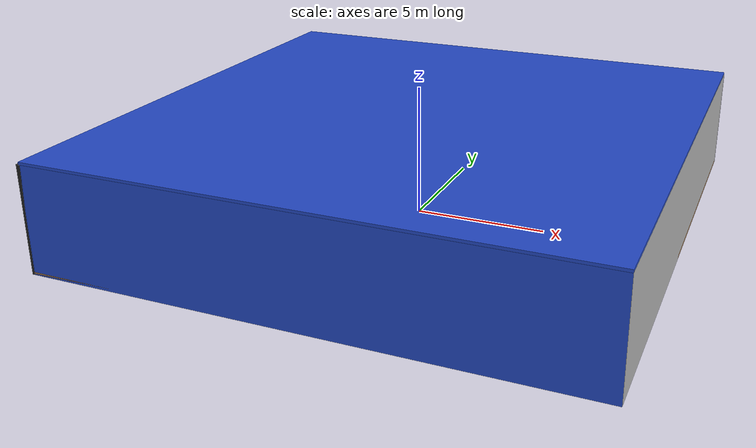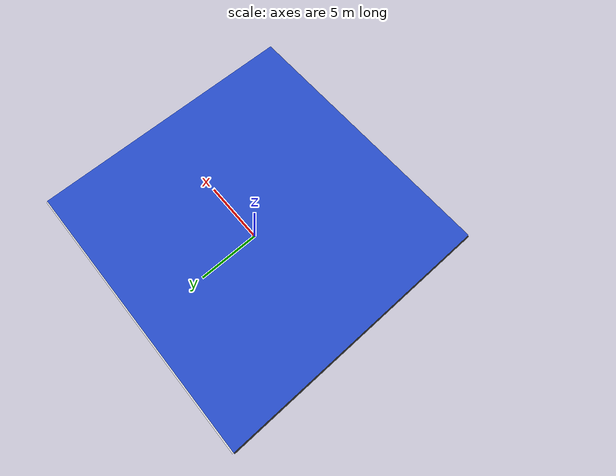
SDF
<sdf version="1.4">
 <world name="default">
  <physics type="ode">
   <max_step_size>0.001</max_step_size>
   <real_time_factor>1</real_time_factor>
   <real_time_update_rate>1000</real_time_update_rate>
   <gravity>0 0 -9.8</gravity>
  </physics>
  <scene><ambient>0.4 0.4 0.4 1</ambient><background>0.7 0.7 0.7 1</background><shadows>1</shadows></scene>
  <model name="Surrounding">
   <static>1</static>
   <link name="Ceiling">
    <collision name="Ceiling_Collision"><geometry><box><size>20 20 0.1</size></box></geometry></collision>
    <visual name="Ceiling_Visual">
     <geometry><box><size>20 20 0.1</size></box></geometry>
     <material>
      <script><uri>file://media/materials/scripts/gazebo.material</uri><name>Gazebo/BlueLaser</name></script>
     </material>
    </visual>
    <pose>0 0 4.05 0 0 0</pose>
   </link>
   <link name="Wall_South">
    <collision name="Wall_South_Collision">
     <geometry><box><size>20 0 4</size></box></geometry>
     <pose>0 0 2 0 -0 0</pose>
    </collision>
    <visual name="Wall_South_Visual">
     <pose>0 0 2 0 -0 0</pose>
     <geometry><box><size>20 0 4</size></box></geometry>
     <material>
      <script><uri>file://media/materials/scripts/gazebo.material</uri><name>Gazebo/BlueLaser</name></script>
     </material>
    </visual>
    <velocity_decay><linear>0</linear><angular>0</angular></velocity_decay>
    <pose>0 -10 0 0 -0 0</pose>
   </link>
   <link name="Wall_East">
    <collision name="Wall_21_Collision">
     <geometry><box><size>20 0 4</size></box></geometry>
     <pose>0 0 2 0 -0 0</pose>
    </collision>
    <visual name="Wall_21_Visual">
     <pose>0 0 2 0 -0 0</pose>
     <geometry><box><size>20 0 4</size></box></geometry>
     <material>
      <script><uri>file://media/materials/scripts/gazebo.material</uri><name>Gazebo/PioneerBody</name></script>
     </material>
    </visual>
    <velocity_decay><linear>0</linear><angular>0</angular></velocity_decay>
    <pose>10 0 0 0 -0 1.5708</pose>
   </link>
   <link name="Wall_North">
    <collision name="Wall_22_Collision">
     <geometry><box><size>20 0.2 4</size></box></geometry>
     <pose>0 0 2 0 -0 0</pose>
    </collision>
    <visual name="Wall_22_Visual">
     <pose>0 0 2 0 -0 0</pose>
     <geometry><box><size>20 0.2 4</size></box></geometry>
     <material>
      <script><uri>file://media/materials/scripts/gazebo.material</uri><name>Gazebo/White</name></script>
     </material>
    </visual>
    <velocity_decay><linear>0</linear><angular>0</angular></velocity_decay>
    <pose>0 10 0 0 -0 0</pose>
   </link>
   <link name="Wall_West">
    <collision name="Wall_23_Collision">
     <geometry><box><size>20 0.2 4</size></box></geometry>
     <pose>0 0 2 0 -0 0</pose>
    </collision>
    <visual name="Wall_23_Visual">
     <pose>0 0 2 0 -0 0</pose>
     <geometry><box><size>20 0.2 4</size></box></geometry>
     <material>
      <script><uri>file://media/materials/scripts/gazebo.material</uri><name>Gazebo/Black</name></script>
     </material>
    </visual>
    <velocity_decay><linear>0</linear><angular>0</angular></velocity_decay>
    <pose>-10 0 0 0 0 -1.5708</pose>
   </link>
   <link name="Ground_link">
    <collision name="collision">
     <pose>0 0 .05 0 -0 0</pose>
     <geometry><box><size>20 20 0.1</size></box></geometry>
    </collision>
    <visual name="visual">
     <pose>0 0 .05 0 -0 0</pose>
     <geometry><box><size>20 20 0.1</size></box></geometry>
     <material>
      <script><uri>file://media/materials/scripts/gazebo.material</uri><name>Gazebo/Wood</name></script>
     </material>
    </visual>
   </link>
   <static>1</static>
  </model>
  <spherical_coordinates>
   <surface_model>EARTH_WGS84</surface_model>
   <latitude_deg>0</latitude_deg>
   <longitude_deg>0</longitude_deg>
   <elevation>0</elevation>
   <heading_deg>0</heading_deg>
  </spherical_coordinates>
  <light name="lightball_0" type="diffuse">
   <diffuse>0.8 0.8 0.8 1</diffuse>
   <specular>0.2 0.2 0.2 1</specular>
   <attenuation>
    <range>100</range>
    <constant>0.7</constant>
    <linear>0.01</linear>
    <quadratic>0.001</quadratic>
   </attenuation>
   <direction>-0.5 0.1 -0.9</direction>
   <pose>-3.09466557247 -8.02374816227 2.96020008288 0 0 0</pose>
  </light>
  <light name="lightball_1" type="diffuse">
   <diffuse>0.8 0.8 0.8 1</diffuse>
   <specular>0.2 0.2 0.2 1</specular>
   <attenuation>
    <range>100</range>
    <constant>0.7</constant>
    <linear>0.01</linear>
    <quadratic>0.001</quadratic>
   </attenuation>
   <direction>-0.5 0.1 -0.9</direction>
   <pose>8.18727550061 3.72708620246 1.70164024116 0 0 0</pose>
  </light>
  <light name="lightball_2" type="diffuse">
   <diffuse>0.8 0.8 0.8 1</diffuse>
   <specular>0.2 0.2 0.2 1</specular>
   <attenuation>
    <range>100</range>
    <constant>0.7</constant>
    <linear>0.01</linear>
    <quadratic>0.001</quadratic>
   </attenuation>
   <direction>-0.5 0.1 -0.9</direction>
   <pose>-6.74949024783 5.63409790345 3.02054041074 0 0 0</pose>
  </light>
  <light name="lightball_3" type="diffuse">
   <diffuse>0.8 0.8 0.8 1</diffuse>
   <specular>0.2 0.2 0.2 1</specular>
   <attenuation>
    <range>100</range>
    <constant>0.7</constant>
    <linear>0.01</linear>
    <quadratic>0.001</quadratic>
   </attenuation>
   <direction>-0.5 0.1 -0.9</direction>
   <pose>4.43106242028 -9.0231418853 1.0335370949 0 0 0</pose>
  </light>
  <light name="lightball_4" type="diffuse">
   <diffuse>0.8 0.8 0.8 1</diffuse>
   <specular>0.2 0.2 0.2 1</specular>
   <attenuation>
    <range>100</range>
    <constant>0.7</constant>
    <linear>0.01</linear>
    <quadratic>0.001</quadratic>
   </attenuation>
   <direction>-0.5 0.1 -0.9</direction>
   <pose>5.68083517318 8.62057873368 1.71628193859 0 0 0</pose>
  </light>
  <light name="lightball_5" type="diffuse">
   <diffuse>0.8 0.8 0.8 1</diffuse>
   <specular>0.2 0.2 0.2 1</specular>
   <attenuation>
    <range>100</range>
    <constant>0.7</constant>
    <linear>0.01</linear>
    <quadratic>0.001</quadratic>
   </attenuation>
   <direction>-0.5 0.1 -0.9</direction>
   <pose>1.42349630299 -7.2432588506 2.746601355 0 0 0</pose>
  </light>
  <light name="lightball_6" type="diffuse">
   <diffuse>0.8 0.8 0.8 1</diffuse>
   <specular>0.2 0.2 0.2 1</specular>
   <attenuation>
    <range>100</range>
    <constant>0.7</constant>
    <linear>0.01</linear>
    <quadratic>0.001</quadratic>
   </attenuation>
   <direction>-0.5 0.1 -0.9</direction>
   <pose>-2.50527705469 -0.249411445509 1.79901718689 0 0 0</pose>
  </light>
  <light name="lightball_7" type="diffuse">
   <diffuse>0.8 0.8 0.8 1</diffuse>
   <specular>0.2 0.2 0.2 1</specular>
   <attenuation>
    <range>100</range>
    <constant>0.7</constant>
    <linear>0.01</linear>
    <quadratic>0.001</quadratic>
   </attenuation>
   <direction>-0.5 0.1 -0.9</direction>
   <pose>-0.783559061727 -8.91884345351 1.99752470864 0 0 0</pose>
  </light>
  <light name="lightball_8" type="diffuse">
   <diffuse>0.8 0.8 0.8 1</diffuse>
   <specular>0.2 0.2 0.2 1</specular>
   <attenuation>
    <range>100</range>
    <constant>0.7</constant>
    <linear>0.01</linear>
    <quadratic>0.001</quadratic>
   </attenuation>
   <direction>-0.5 0.1 -0.9</direction>
   <pose>-9.14121743358 9.95894384434 3.08081786821 0 0 0</pose>
  </light>
  <light name="lightball_9" type="diffuse">
   <diffuse>0.8 0.8 0.8 1</diffuse>
   <specular>0.2 0.2 0.2 1</specular>
   <attenuation>
    <range>100</range>
    <constant>0.7</constant>
    <linear>0.01</linear>
    <quadratic>0.001</quadratic>
   </attenuation>
   <direction>-0.5 0.1 -0.9</direction>
   <pose>3.35013340779 6.46895227269 2.15289394109 0 0 0</pose>
  </light>
  <light name="lightball_10" type="diffuse">
   <diffuse>0.8 0.8 0.8 1</diffuse>
   <specular>0.2 0.2 0.2 1</specular>
   <attenuation>
    <range>100</range>
    <constant>0.7</constant>
    <linear>0.01</linear>
    <quadratic>0.001</quadratic>
   </attenuation>
   <direction>-0.5 0.1 -0.9</direction>
   <pose>2.79477945711 -4.47726188532 1.3640508255 0 0 0</pose>
  </light>
  <light name="lightball_11" type="diffuse">
   <diffuse>0.8 0.8 0.8 1</diffuse>
   <specular>0.2 0.2 0.2 1</specular>
   <attenuation>
    <range>100</range>
    <constant>0.7</constant>
    <linear>0.01</linear>
    <quadratic>0.001</quadratic>
   </attenuation>
   <direction>-0.5 0.1 -0.9</direction>
   <pose>6.10357630242 8.95800148795 3.065573056 0 0 0</pose>
  </light>
  <light name="lightball_12" type="diffuse">
   <diffuse>0.8 0.8 0.8 1</diffuse>
   <specular>0.2 0.2 0.2 1</specular>
   <attenuation>
    <range>100</range>
    <constant>0.7</constant>
    <linear>0.01</linear>
    <quadratic>0.001</quadratic>
   </attenuation>
   <direction>-0.5 0.1 -0.9</direction>
   <pose>8.08442466873 -9.45389336621 1.28439241148 0 0 0</pose>
  </light>
  <light name="lightball_13" type="diffuse">
   <diffuse>0.8 0.8 0.8 1</diffuse>
   <specular>0.2 0.2 0.2 1</specular>
   <attenuation>
    <range>100</range>
    <constant>0.7</constant>
    <linear>0.01</linear>
    <quadratic>0.001</quadratic>
   </attenuation>
   <direction>-0.5 0.1 -0.9</direction>
   <pose>-5.74320091786 -8.77350561186 1.64860918964 0 0 0</pose>
  </light>
  <include>
   <uri>model://robocup_3Dsim_goal</uri>
   <pose>-2.12468737533 3.56806204508 0 0 0 2.57184248907</pose>
  </include>
  <include>
   <uri>model://construction_cone</uri>
   <pose>0.65637294489 8.69584867664 0 0 0 2.80981444223</pose>
  </include>
  <include><uri>model://table</uri><pose>8.51135075549 -0.492469455713 0 0 0 0.111494117502</pose></include>
 </world>
</sdf>

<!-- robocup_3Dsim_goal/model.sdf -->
<sdf version="1.5">
  <model name="robocup_3d_goal">
    <static>true</static>
    <link name="left_post">
      <pose>0 1.05 0.45 0 0 0</pose>
      <collision name="collision">
        <geometry>
          <cylinder>
            <radius>0.05</radius>
            <length>0.9</length>
          </cylinder>
        </geometry>
      </collision>
      <visual name="visual">
        <geometry>
          <cylinder>
            <radius>0.05</radius>
            <length>0.9</length>
          </cylinder>
        </geometry>
        <material>
          <script>
            <uri>file://media/materials/scripts/gazebo.material</uri>
            <name>Gazebo/ZincYellow</name>
          </script>
        </material>
      </visual>
    </link>
    <link name="left_support_horiz_lower">
      <pose>0.30 1.05 0.01 0 0 0</pose>
      <collision name="collision">
        <geometry>
          <box>
            <size>0.50 0.02 0.02</size>
          </box>
        </geometry>
      </collision>
      <visual name="visual">
        <geometry>
          <box>
            <size>0.50 0.02 0.02</size>
          </box>
        </geometry>
        <material>
          <script>
            <uri>file://media/materials/scripts/gazebo.material</uri>
            <name>Gazebo/White</name>
          </script>
        </material>
      </visual>
    </link>
    <link name="left_support_horiz_upper">
      <pose>0.30 1.05 0.79 0 0 0</pose>
      <collision name="collision">
        <geometry>
          <box>
            <size>0.50 0.02 0.02</size>
          </box>
        </geometry>
      </collision>
      <visual name="visual">
        <geometry>
          <box>
            <size>0.50 0.02 0.02</size>
          </box>
        </geometry>
        <material>
          <script>
            <uri>file://media/materials/scripts/gazebo.material</uri>
            <name>Gazebo/White</name>
          </script>
        </material>
      </visual>
    </link>
    <link name="left_support_vertical">
      <pose>0.56 1.05 0.4 0 1.5708 0</pose>
      <collision name="collision">
        <geometry>
          <box>
            <size>0.80 0.02 0.02</size>
          </box>
        </geometry>
      </collision>
      <visual name="visual">
        <geometry>
          <box>
            <size>0.80 0.02 0.02</size>
          </box>
        </geometry>
        <material>
          <script>
            <uri>file://media/materials/scripts/gazebo.material</uri>
            <name>Gazebo/White</name>
          </script>
        </material>
      </visual>
    </link>
    <link name="right_support_horiz_lower">
      <pose>0.30 -1.05 0.01 0 0 0</pose>
      <collision name="collision">
        <geometry>
          <box>
            <size>0.50 0.02 0.02</size>
          </box>
        </geometry>
      </collision>
      <visual name="visual">
        <geometry>
          <box>
            <size>0.50 0.02 0.02</size>
          </box>
        </geometry>
        <material>
          <script>
            <uri>file://media/materials/scripts/gazebo.material</uri>
            <name>Gazebo/White</name>
          </script>
        </material>
      </visual>
    </link>
    <link name="right_support_horiz_upper">
      <pose>0.30 -1.05 0.79 0 0 0</pose>
      <collision name="collision">
        <geometry>
          <box>
            <size>0.50 0.02 0.02</size>
          </box>
        </geometry>
      </collision>
      <visual name="visual">
        <geometry>
          <box>
            <size>0.50 0.02 0.02</size>
          </box>
        </geometry>
        <material>
          <script>
            <uri>file://media/materials/scripts/gazebo.material</uri>
            <name>Gazebo/White</name>
          </script>
        </material>
      </visual>
    </link>
    <link name="right_support_vertical">
      <pose>0.56 -1.05 0.4 0 1.5708 0</pose>
      <collision name="collision">
        <geometry>
          <box>
            <size>0.80 0.02 0.02</size>
          </box>
        </geometry>
      </collision>
      <visual name="visual">
        <geometry>
          <box>
            <size>0.80 0.02 0.02</size>
          </box>
        </geometry>
        <material>
          <script>
            <uri>file://media/materials/scripts/gazebo.material</uri>
            <name>Gazebo/White</name>
          </script>
        </material>
      </visual>
    </link>
    <link name="center_support_horiz_lower">
      <pose>0.56 0 0.01 0 1.5708 0</pose>
      <collision name="collision">
        <geometry>
          <box>
            <size>0.02 2.08 0.02</size>
          </box>
        </geometry>
      </collision>
      <visual name="visual">
        <geometry>
          <box>
            <size>0.02 2.08 0.02</size>
          </box>
        </geometry>
        <material>
          <script>
            <uri>file://media/materials/scripts/gazebo.material</uri>
            <name>Gazebo/White</name>
          </script>
        </material>
      </visual>
    </link>
    <link name="center_support_horiz_upper">
      <pose>0.56 0 0.79 0 1.5708 0</pose>
      <collision name="collision">
        <geometry>
          <box>
            <size>0.02 2.08 0.02</size>
          </box>
        </geometry>
      </collision>
      <visual name="visual">
        <geometry>
          <box>
            <size>0.02 2.08 0.02</size>
          </box>
        </geometry>
        <material>
          <script>
            <uri>file://media/materials/scripts/gazebo.material</uri>
            <name>Gazebo/White</name>
          </script>
        </material>
      </visual>
    </link>
    <link name="right_post">
      <pose>0 -1.05 0.45 0 0 0</pose>
      <collision name="collision">
        <geometry>
          <cylinder>
            <radius>0.05</radius>
            <length>0.9</length>
          </cylinder>
        </geometry>
      </collision>
      <visual name="visual">
        <geometry>
          <cylinder>
            <radius>0.05</radius>
            <length>0.9</length>
          </cylinder>
        </geometry>
        <material>
          <script>
            <uri>file://media/materials/scripts/gazebo.material</uri>
            <name>Gazebo/ZincYellow</name>
          </script>
        </material>
      </visual>
    </link>
    <link name="crossbar">
      <pose>0 0 0.85 1.57 1.57 0</pose>
      <collision name="collision">
        <geometry>
          <cylinder>
            <radius>0.05</radius>
            <length>2.0</length>
          </cylinder>
        </geometry>
      </collision>
      <visual name="visual">
        <geometry>
          <cylinder>
            <radius>0.05</radius>
            <length>2.0</length>
          </cylinder>
        </geometry>
        <material>
          <script>
            <uri>file://media/materials/scripts/gazebo.material</uri>
            <name>Gazebo/ZincYellow</name>
          </script>
        </material>
      </visual>
    </link>
    <link name="center_net">
      <pose>0.56 0 0.40 0 0 0</pose>
      <collision name="collision">
        <geometry>
          <box>
            <size>0.01 2.1 0.80</size>
          </box>
        </geometry>
      </collision>
      <visual name="visual">
        <geometry>
          <box>
            <size>0.01 2.1 0.80</size>
          </box>
        </geometry>
        <material>
          <script>
            <uri>model://../model_source/models/robocup09_spl_field/materials/scripts/</uri>
            <uri>model://../model_source/models/robocup09_spl_field/materials/textures/</uri>
            <name>RoboCup/Net</name>
          </script>
        </material>
      </visual>
    </link>
    <link name="left_net">
      <pose>0.30 1.05 0.40 0 0 0</pose>
      <collision name="collision">
        <geometry>
          <box>
            <size>0.50 0.01 0.76</size>
          </box>
        </geometry>
      </collision>
      <visual name="visual">
        <geometry>
          <box>
            <size>0.50 0.01 0.76</size>
          </box>
        </geometry>
        <material>
          <script>
            <uri>model://../model_source/models/robocup09_spl_field/materials/scripts/</uri>
            <uri>model://../model_source/models/robocup09_spl_field/materials/textures/</uri>
            <name>RoboCup/Net</name>
          </script>
        </material>
      </visual>
    </link>
    <link name="right_net">
      <pose>0.30 -1.05 0.40 0 0 0</pose>
      <collision name="collision">
        <geometry>
          <box>
            <size>0.50 0.01 0.76</size>
          </box>
        </geometry>
      </collision>
      <visual name="visual">
        <geometry>
          <box>
            <size>0.50 0.01 0.76</size>
          </box>
        </geometry>
        <material>
          <script>
            <uri>model://../model_source/models/robocup09_spl_field/materials/scripts/</uri>
            <uri>model://../model_source/models/robocup09_spl_field/materials/textures/</uri>
            <name>RoboCup/Net</name>
          </script>
        </material>
      </visual>
    </link>
  </model>
</sdf>

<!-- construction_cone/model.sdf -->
<sdf version="1.5">
  <model name="Construction Cone">
    <link name="link">
      <collision name="collision">
        <geometry>
          <mesh>
            <scale>10 10 10</scale>
            <uri>file://isr-testbed/construction_cone/meshes/construction_cone.dae</uri>
          </mesh>
        </geometry>
      </collision>
      <visual name="visual">
        <geometry>
          <mesh>
            <scale>10 10 10</scale>
            <uri>file://isr-testbed/construction_cone/meshes/construction_cone.dae</uri>
          </mesh>
        </geometry>
      </visual>
    </link>
  </model>
</sdf>

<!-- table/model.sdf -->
<sdf version="1.5">
  <model name="table">
    <static>true</static>
    <link name="link">
      <collision name="surface">
        <pose>0 0 1.0 0 0 0</pose>
        <geometry>
          <box>
            <size>1.5 0.8 0.03</size>
          </box>
        </geometry>
        <surface>
          <friction>
            <ode>
              <mu>0.6</mu>
              <mu2>0.6</mu2>
            </ode>
          </friction>
        </surface>
      </collision>
      <visual name="visual1">
        <pose>0 0 1.0 0 0 0</pose>
        <geometry>
          <box>
            <size>1.5 0.8 0.03</size>
          </box>
        </geometry>
        <material>
          <script>
            <uri>model://media/materials/scripts/gazebo.material</uri>
            <name>Gazebo/Wood</name>
          </script>
        </material>
      </visual>
      <collision name="front_left_leg">
        <pose>0.68 0.38 0.5 0 0 0</pose>
        <geometry>
          <cylinder>
            <radius>0.02</radius>
            <length>1.0</length>
          </cylinder>
        </geometry>
      </collision>
      <visual name="front_left_leg">
        <pose>0.68 0.38 0.5 0 0 0</pose>
        <geometry>
          <cylinder>
            <radius>0.02</radius>
            <length>1.0</length>
          </cylinder>
        </geometry>
        <material>
          <script>
            <uri>model://media/materials/scripts/gazebo.material</uri>
            <name>Gazebo/Grey</name>
          </script>
        </material>
      </visual>
      <collision name="front_right_leg">
        <pose>0.68 -0.38 0.5 0 0 0</pose>
        <geometry>
          <cylinder>
            <radius>0.02</radius>
            <length>1.0</length>
          </cylinder>
        </geometry>
      </collision>
      <visual name="front_right_leg">
        <pose>0.68 -0.38 0.5 0 0 0</pose>
        <geometry>
          <cylinder>
            <radius>0.02</radius>
            <length>1.0</length>
          </cylinder>
        </geometry>
        <material>
          <script>
            <uri>model://media/materials/scripts/gazebo.material</uri>
            <name>Gazebo/Grey</name>
          </script>
        </material>
      </visual>
      <collision name="back_right_leg">
        <pose>-0.68 -0.38 0.5 0 0 0</pose>
        <geometry>
          <cylinder>
            <radius>0.02</radius>
            <length>1.0</length>
          </cylinder>
        </geometry>
      </collision>
      <visual name="back_right_leg">
        <pose>-0.68 -0.38 0.5 0 0 0</pose>
        <geometry>
          <cylinder>
            <radius>0.02</radius>
            <length>1.0</length>
          </cylinder>
        </geometry>
        <material>
          <script>
            <uri>model://media/materials/scripts/gazebo.material</uri>
            <name>Gazebo/Grey</name>
          </script>
        </material>
      </visual>
      <collision name="back_left_leg">
        <pose>-0.68 0.38 0.5 0 0 0</pose>
        <geometry>
          <cylinder>
            <radius>0.02</radius>
            <length>1.0</length>
          </cylinder>
        </geometry>
      </collision>
      <visual name="back_left_leg">
        <pose>-0.68 0.38 0.5 0 0 0</pose>
        <geometry>
          <cylinder>
            <radius>0.02</radius>
            <length>1.0</length>
          </cylinder>
        </geometry>
        <material>
          <script>
            <uri>model://media/materials/scripts/gazebo.material</uri>
            <name>Gazebo/Grey</name>
          </script>
        </material>
      </visual>
    </link>
  </model>
</sdf>
